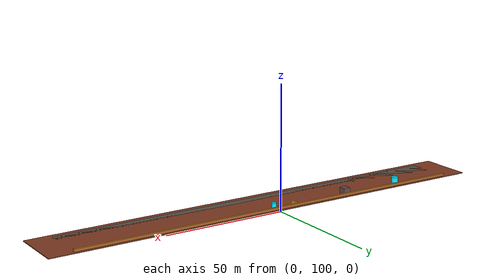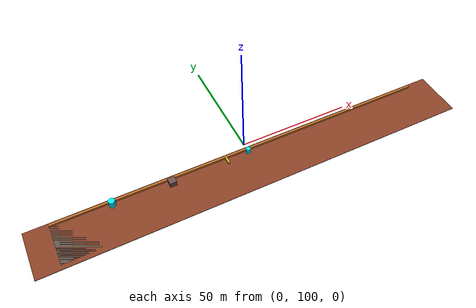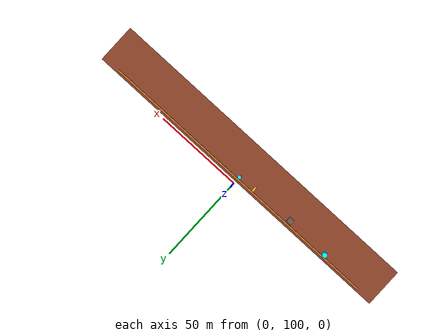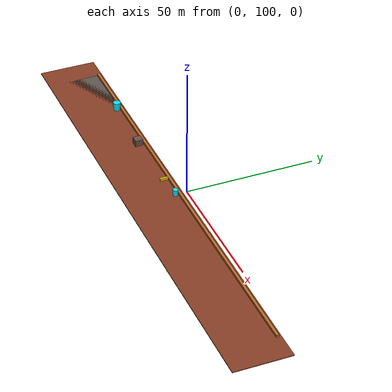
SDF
<sdf version="1.9">
 <world name="sih_mine_world">
  <model name="Bench1_North">
   <static>true</static>
   <pose>0 87.5 -0.15 0 0 0</pose>
   <link name="link">
    <collision name="collision">
     <geometry><box><size>190.0 22.0 0.3</size></box></geometry>
     <surface><friction><ode><mu>0.9</mu><mu2>0.9</mu2></ode></friction></surface>
    </collision>
    <visual name="visual">
     <geometry><box><size>190.0 22.0 0.3</size></box></geometry>
     <material><ambient>0.52 0.24 0.14 1</ambient><diffuse>0.52 0.24 0.14 1</diffuse></material>
    </visual>
   </link>
  </model>
  <model name="Road_Spawn_Apron">
   <static>true</static>
   <pose>0 87.5 -0.15 0 0 0</pose>
   <link name="link">
    <collision name="collision">
     <geometry><box><size>170 18.0 0.3</size></box></geometry>
     <surface><friction><ode><mu>1.0</mu><mu2>0.9</mu2></ode></friction></surface>
    </collision>
    <visual name="visual">
     <geometry><box><size>170 18.0 0.3</size></box></geometry>
     <material><ambient>0.36 0.33 0.30 1</ambient><diffuse>0.36 0.33 0.30 1</diffuse></material>
    </visual>
   </link>
  </model>
  <model name="Berm_Apron_North">
   <static>true</static>
   <pose>0 97.0 0.5 0 0 0</pose>
   <link name="link">
    <collision name="collision">
     <geometry><box><size>170.0 1.0 1.0</size></box></geometry>
     <surface><friction><ode><mu>0.8</mu><mu2>0.8</mu2></ode></friction></surface>
    </collision>
    <visual name="visual">
     <geometry><box><size>170.0 1.0 1.0</size></box></geometry>
     <material><ambient>0.72 0.42 0.15 1</ambient><diffuse>0.72 0.42 0.15 1</diffuse></material>
    </visual>
   </link>
  </model>
  <model name="Rock_Hazard_01">
   <static>true</static>
   <pose>-35.0 94.5 1.25 0 0 0</pose>
   <link name="link">
    <collision name="collision">
     <geometry><box><size>3.0 3.0 2.5</size></box></geometry>
     <surface><friction><ode><mu>0.9</mu><mu2>0.9</mu2></ode></friction></surface>
    </collision>
    <visual name="visual">
     <geometry><box><size>3.0 3.0 2.5</size></box></geometry>
     <material><ambient>0.42 0.30 0.28 1</ambient><diffuse>0.42 0.30 0.28 1</diffuse></material>
    </visual>
   </link>
  </model>
  <model name="Safety_Barrier_Metal_01">
   <static>true</static>
   <pose>-10.0 95.0 0.5 0 0 0</pose>
   <link name="link">
    <collision name="collision">
     <geometry><box><size>0.8 3.0 1.0</size></box></geometry>
     <surface><friction><ode><mu>0.7</mu><mu2>0.7</mu2></ode></friction></surface>
    </collision>
    <visual name="visual">
     <geometry><box><size>0.8 3.0 1.0</size></box></geometry>
     <material><ambient>0.95 0.75 0.05 1</ambient><diffuse>0.95 0.75 0.05 1</diffuse></material>
    </visual>
   </link>
  </model>
  <model name="Spawn_Marker_01">
   <static>true</static>
   <pose>-60 95.5 1.5 0 0 0</pose>
   <link name="link">
    <visual name="visual">
     <geometry><cylinder><radius>1.4</radius><length>3.0</length></cylinder></geometry>
     <material><ambient>0.0 0.9 1.0 1</ambient><diffuse>0.0 0.9 1.0 1</diffuse></material>
    </visual>
   </link>
  </model>
  <model name="Waypoint_01">
   <static>true</static>
   <pose>0 95.5 1.2 0 0 0</pose>
   <link name="link">
    <visual name="visual">
     <geometry><cylinder><radius>1.0</radius><length>2.4</length></cylinder></geometry>
     <material><ambient>0.0 0.9 1.0 1</ambient><diffuse>0.0 0.9 1.0 1</diffuse></material>
    </visual>
   </link>
  </model>
 </world>
</sdf>
